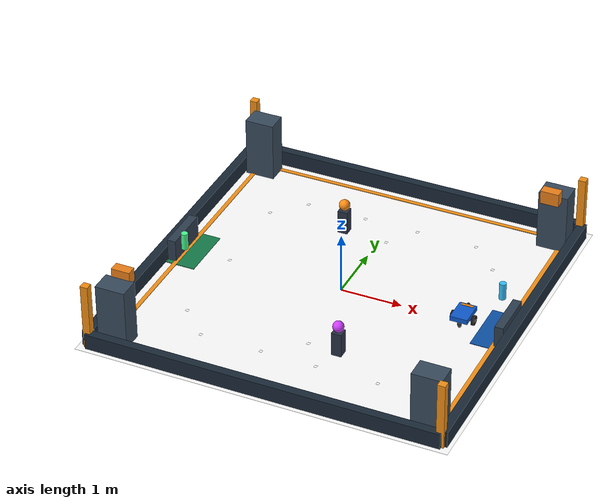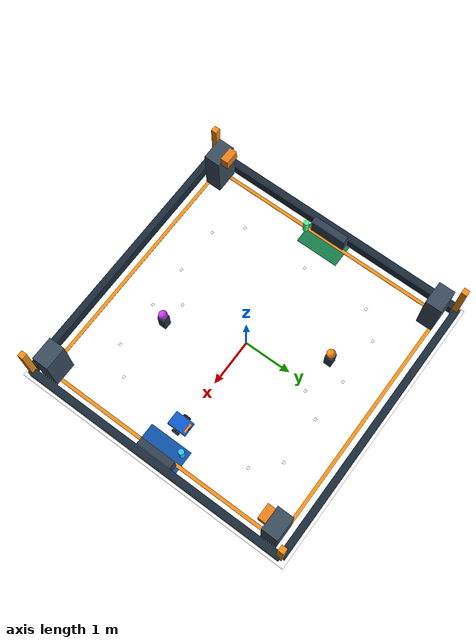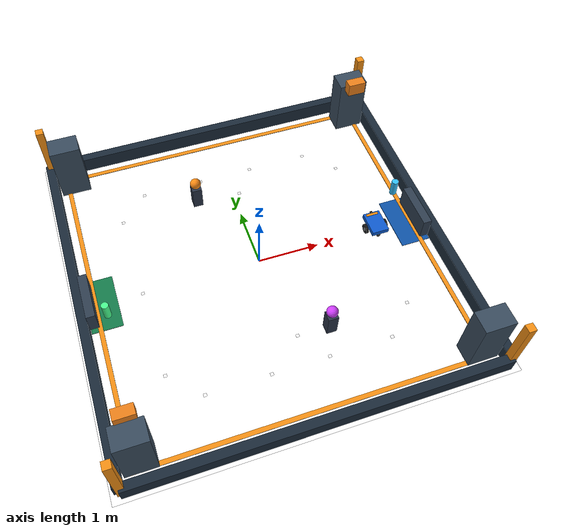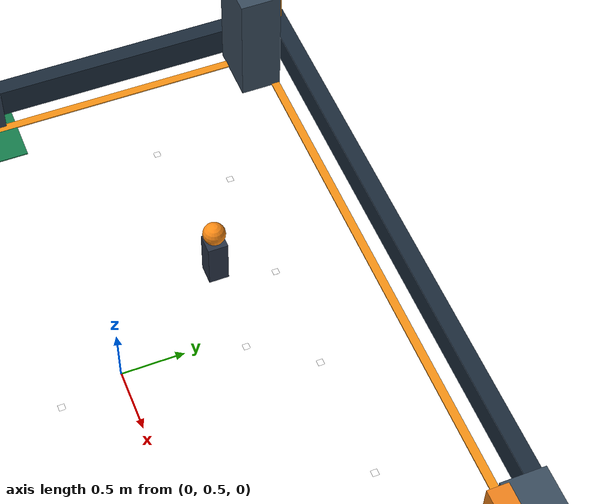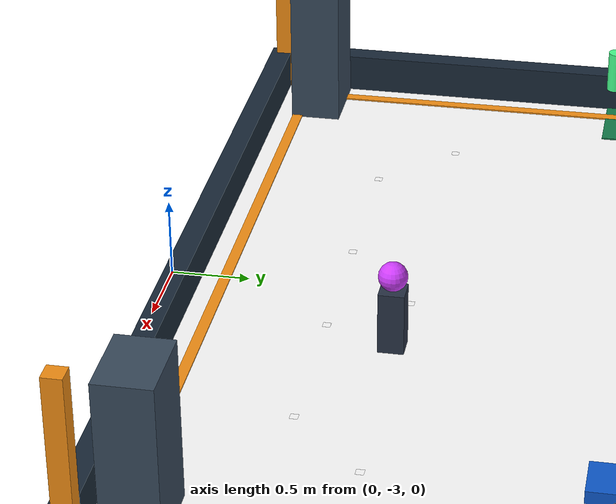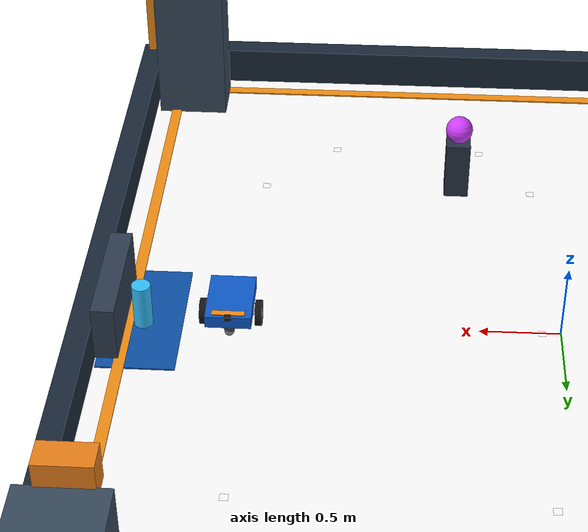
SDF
<?xml version='1.0' encoding='utf-8'?>
<sdf version="1.8">
  <world name="track_world">
    <physics name="physics" type="ignored">
      <max_step_size>0.02</max_step_size>
      <real_time_factor>1.0</real_time_factor>
    </physics>
    <plugin filename="libignition-gazebo-physics-system.so" name="ignition::gazebo::systems::Physics" />
    <plugin filename="libignition-gazebo-user-commands-system.so" name="ignition::gazebo::systems::UserCommands" />
    <plugin filename="libignition-gazebo-scene-broadcaster-system.so" name="ignition::gazebo::systems::SceneBroadcaster" />
    <scene>
      <ambient>0.8 0.8 0.8 1</ambient>
      <background>0.6 0.7 0.8 1</background>
      <shadows>false</shadows>
    </scene>
    <light name="sun" type="directional">
      <pose>0 0 10 0 0 0</pose>
      <diffuse>0.8 0.8 0.8 1</diffuse>
      <specular>0.1 0.1 0.1 1</specular>
      <direction>0 0 -1</direction>
      <cast_shadows>false</cast_shadows>
    </light>
    <model name="track_floor">
      <static>true</static>
      <link name="floor_link">
        <collision name="floor_collision">
          <geometry>
            <plane>
              <normal>0 0 1</normal>
              <size>6.0 6.0</size>
            </plane>
          </geometry>
        </collision>
        <visual name="floor_visual">
          <geometry>
            <plane>
              <normal>0 0 1</normal>
              <size>6.0 6.0</size>
            </plane>
          </geometry>
          <material>
            <ambient>1 1 1 1</ambient>
            <diffuse>1 1 1 1</diffuse>
            <specular>0 0 0 1</specular>
            <pbr>
              <metal>
                <albedo_map>../assets/generated_floors/junction_track.png</albedo_map>
                <metalness>0</metalness>
                <roughness>1</roughness>
              </metal>
            </pbr>
          </material>
        </visual>
      </link>
    </model>
    <plugin name="ignition::gazebo::systems::Sensors" filename="libignition-gazebo-sensors-system.so">
      <render_engine>ogre2</render_engine>
    </plugin>
    <!-- Visual-only warehouse scenery. It deliberately has no collision geometry,
         so it cannot alter the tested track, QR visibility footprint, or robot motion. -->
    <model name="warehouse_perimeter">
      <static>true</static>
      <link name="structure">
        <visual name="north_curb">
          <pose>0 2.87 0.13 0 0 0</pose>
          <geometry><box><size>5.72 0.14 0.26</size></box></geometry>
          <material><ambient>0.10 0.16 0.22 1</ambient><diffuse>0.10 0.16 0.22 1</diffuse></material>
        </visual>
        <visual name="south_curb">
          <pose>0 -2.87 0.13 0 0 0</pose>
          <geometry><box><size>5.72 0.14 0.26</size></box></geometry>
          <material><ambient>0.10 0.16 0.22 1</ambient><diffuse>0.10 0.16 0.22 1</diffuse></material>
        </visual>
        <visual name="east_curb">
          <pose>2.87 0 0.13 0 0 0</pose>
          <geometry><box><size>0.14 5.72 0.26</size></box></geometry>
          <material><ambient>0.10 0.16 0.22 1</ambient><diffuse>0.10 0.16 0.22 1</diffuse></material>
        </visual>
        <visual name="west_curb">
          <pose>-2.87 0 0.13 0 0 0</pose>
          <geometry><box><size>0.14 5.72 0.26</size></box></geometry>
          <material><ambient>0.10 0.16 0.22 1</ambient><diffuse>0.10 0.16 0.22 1</diffuse></material>
        </visual>
        <visual name="north_safety_strip"><pose>0 2.65 0.007 0 0 0</pose><geometry><box><size>5.38 0.07 0.01</size></box></geometry><material><ambient>0.95 0.56 0.08 1</ambient><diffuse>0.95 0.56 0.08 1</diffuse></material></visual>
        <visual name="south_safety_strip"><pose>0 -2.65 0.007 0 0 0</pose><geometry><box><size>5.38 0.07 0.01</size></box></geometry><material><ambient>0.95 0.56 0.08 1</ambient><diffuse>0.95 0.56 0.08 1</diffuse></material></visual>
        <visual name="east_safety_strip"><pose>2.65 0 0.007 0 0 0</pose><geometry><box><size>0.07 5.38 0.01</size></box></geometry><material><ambient>0.95 0.56 0.08 1</ambient><diffuse>0.95 0.56 0.08 1</diffuse></material></visual>
        <visual name="west_safety_strip"><pose>-2.65 0 0.007 0 0 0</pose><geometry><box><size>0.07 5.38 0.01</size></box></geometry><material><ambient>0.95 0.56 0.08 1</ambient><diffuse>0.95 0.56 0.08 1</diffuse></material></visual>
        <visual name="corner_post_ne"><pose>2.84 2.84 0.55 0 0 0</pose><geometry><box><size>0.12 0.12 1.10</size></box></geometry><material><ambient>0.95 0.56 0.08 1</ambient><diffuse>0.95 0.56 0.08 1</diffuse></material></visual>
        <visual name="corner_post_nw"><pose>-2.84 2.84 0.55 0 0 0</pose><geometry><box><size>0.12 0.12 1.10</size></box></geometry><material><ambient>0.95 0.56 0.08 1</ambient><diffuse>0.95 0.56 0.08 1</diffuse></material></visual>
        <visual name="corner_post_se"><pose>2.84 -2.84 0.55 0 0 0</pose><geometry><box><size>0.12 0.12 1.10</size></box></geometry><material><ambient>0.95 0.56 0.08 1</ambient><diffuse>0.95 0.56 0.08 1</diffuse></material></visual>
        <visual name="corner_post_sw"><pose>-2.84 -2.84 0.55 0 0 0</pose><geometry><box><size>0.12 0.12 1.10</size></box></geometry><material><ambient>0.95 0.56 0.08 1</ambient><diffuse>0.95 0.56 0.08 1</diffuse></material></visual>
      </link>
    </model>
    <model name="station_a_loading_bay">
      <static>true</static>
      <link name="bay">
        <visual name="floor_strip"><pose>2.55 0 0.006 0 0 0</pose><geometry><box><size>0.48 0.92 0.01</size></box></geometry><material><ambient>0.05 0.32 0.65 1</ambient><diffuse>0.05 0.32 0.65 1</diffuse></material></visual>
        <visual name="dock"><pose>2.73 0 0.19 0 0 0</pose><geometry><box><size>0.14 0.76 0.36</size></box></geometry><material><ambient>0.18 0.24 0.31 1</ambient><diffuse>0.18 0.24 0.31 1</diffuse></material></visual>
        <visual name="beacon"><pose>2.48 0.40 0.46 0 0 0</pose><geometry><cylinder><radius>0.055</radius><length>0.28</length></cylinder></geometry><material><ambient>0.20 0.76 1 1</ambient><diffuse>0.20 0.76 1 1</diffuse><emissive>0.06 0.28 0.40 1</emissive></material></visual>
      </link>
    </model>
    <model name="station_c_loading_bay">
      <static>true</static>
      <link name="bay">
        <visual name="floor_strip"><pose>-2.55 0 0.006 0 0 0</pose><geometry><box><size>0.48 0.92 0.01</size></box></geometry><material><ambient>0.08 0.48 0.29 1</ambient><diffuse>0.08 0.48 0.29 1</diffuse></material></visual>
        <visual name="dock"><pose>-2.73 0 0.19 0 0 0</pose><geometry><box><size>0.14 0.76 0.36</size></box></geometry><material><ambient>0.18 0.24 0.31 1</ambient><diffuse>0.18 0.24 0.31 1</diffuse></material></visual>
        <visual name="beacon"><pose>-2.48 -0.40 0.46 0 0 0</pose><geometry><cylinder><radius>0.055</radius><length>0.28</length></cylinder></geometry><material><ambient>0.28 1 0.56 1</ambient><diffuse>0.28 1 0.56 1</diffuse><emissive>0.08 0.35 0.17 1</emissive></material></visual>
      </link>
    </model>
    <model name="warehouse_shelves">
      <static>true</static>
      <link name="shelves">
        <visual name="north_east_shelf"><pose>2.53 2.52 0.50 0 0 0</pose><geometry><box><size>0.48 0.34 1.0</size></box></geometry><material><ambient>0.22 0.29 0.36 1</ambient><diffuse>0.22 0.29 0.36 1</diffuse></material></visual>
        <visual name="north_west_shelf"><pose>-2.53 2.52 0.50 0 0 0</pose><geometry><box><size>0.48 0.34 1.0</size></box></geometry><material><ambient>0.22 0.29 0.36 1</ambient><diffuse>0.22 0.29 0.36 1</diffuse></material></visual>
        <visual name="south_east_shelf"><pose>2.53 -2.52 0.50 0 0 0</pose><geometry><box><size>0.48 0.34 1.0</size></box></geometry><material><ambient>0.22 0.29 0.36 1</ambient><diffuse>0.22 0.29 0.36 1</diffuse></material></visual>
        <visual name="south_west_shelf"><pose>-2.53 -2.52 0.50 0 0 0</pose><geometry><box><size>0.48 0.34 1.0</size></box></geometry><material><ambient>0.22 0.29 0.36 1</ambient><diffuse>0.22 0.29 0.36 1</diffuse></material></visual>
        <visual name="north_east_crate"><pose>2.52 2.28 1.03 0 0 0</pose><geometry><box><size>0.30 0.16 0.22</size></box></geometry><material><ambient>0.92 0.50 0.10 1</ambient><diffuse>0.92 0.50 0.10 1</diffuse></material></visual>
        <visual name="south_west_crate"><pose>-2.52 -2.28 1.03 0 0 0</pose><geometry><box><size>0.30 0.16 0.22</size></box></geometry><material><ambient>0.92 0.50 0.10 1</ambient><diffuse>0.92 0.50 0.10 1</diffuse></material></visual>
      </link>
    </model>
    <model name="junction_beacons">
      <static>true</static>
      <link name="beacons">
        <visual name="north_beacon_base"><pose>-0.62 1.48 0.20 0 0 0</pose><geometry><box><size>0.16 0.16 0.40</size></box></geometry><material><ambient>0.16 0.20 0.27 1</ambient><diffuse>0.16 0.20 0.27 1</diffuse></material></visual>
        <visual name="north_beacon_light"><pose>-0.62 1.48 0.49 0 0 0</pose><geometry><sphere><radius>0.09</radius></sphere></geometry><material><ambient>1 0.55 0.08 1</ambient><diffuse>1 0.55 0.08 1</diffuse><emissive>0.35 0.13 0.01 1</emissive></material></visual>
        <visual name="south_beacon_base"><pose>0.62 -1.48 0.20 0 0 0</pose><geometry><box><size>0.16 0.16 0.40</size></box></geometry><material><ambient>0.16 0.20 0.27 1</ambient><diffuse>0.16 0.20 0.27 1</diffuse></material></visual>
        <visual name="south_beacon_light"><pose>0.62 -1.48 0.49 0 0 0</pose><geometry><sphere><radius>0.09</radius></sphere></geometry><material><ambient>0.82 0.24 1 1</ambient><diffuse>0.82 0.24 1 1</diffuse><emissive>0.23 0.03 0.35 1</emissive></material></visual>
      </link>
    </model>
    <include>
      <uri>model://amr</uri>
      <name>amr</name>
      <pose>2.015 0.0 0.005 0.0 0.0 1.5708</pose>
    </include>
    <model name="qr_turn_1_entry">
      <static>true</static>
      <pose>1.915 1.45 0.001 0 0 0.0</pose>
      <link name="marker">
        <visual name="qr_visual">
          <geometry>
            <plane>
              <normal>0 0 1</normal>
              <size>0.05 0.05</size>
            </plane>
          </geometry>
          <material>
            <ambient>1 1 1 1</ambient>
            <diffuse>1 1 1 1</diffuse>
            <specular>0 0 0 1</specular>
            <pbr>
              <metal>
                <albedo_map>../assets/checkpoints/junction_track/Turn 1 Entry.png</albedo_map>
                <metalness>0</metalness>
                <roughness>1</roughness>
              </metal>
            </pbr>
          </material>
        </visual>
      </link>
    </model>
    <model name="qr_turn_1_exit">
      <static>true</static>
      <pose>1.45 1.915 0.001 0 0 1.5707963267948963</pose>
      <link name="marker">
        <visual name="qr_visual">
          <geometry>
            <plane>
              <normal>0 0 1</normal>
              <size>0.05 0.05</size>
            </plane>
          </geometry>
          <material>
            <ambient>1 1 1 1</ambient>
            <diffuse>1 1 1 1</diffuse>
            <specular>0 0 0 1</specular>
            <pbr>
              <metal>
                <albedo_map>../assets/checkpoints/junction_track/Turn 1 Exit.png</albedo_map>
                <metalness>0</metalness>
                <roughness>1</roughness>
              </metal>
            </pbr>
          </material>
        </visual>
      </link>
    </model>
    <model name="qr_turn_2_entry">
      <static>true</static>
      <pose>-1.45 1.915 0.001 0 0 1.5707963267948966</pose>
      <link name="marker">
        <visual name="qr_visual">
          <geometry>
            <plane>
              <normal>0 0 1</normal>
              <size>0.05 0.05</size>
            </plane>
          </geometry>
          <material>
            <ambient>1 1 1 1</ambient>
            <diffuse>1 1 1 1</diffuse>
            <specular>0 0 0 1</specular>
            <pbr>
              <metal>
                <albedo_map>../assets/checkpoints/junction_track/Turn 2 Entry.png</albedo_map>
                <metalness>0</metalness>
                <roughness>1</roughness>
              </metal>
            </pbr>
          </material>
        </visual>
      </link>
    </model>
    <model name="qr_turn_2_exit">
      <static>true</static>
      <pose>-1.915 1.45 0.001 0 0 3.1415926535897936</pose>
      <link name="marker">
        <visual name="qr_visual">
          <geometry>
            <plane>
              <normal>0 0 1</normal>
              <size>0.05 0.05</size>
            </plane>
          </geometry>
          <material>
            <ambient>1 1 1 1</ambient>
            <diffuse>1 1 1 1</diffuse>
            <specular>0 0 0 1</specular>
            <pbr>
              <metal>
                <albedo_map>../assets/checkpoints/junction_track/Turn 2 Exit.png</albedo_map>
                <metalness>0</metalness>
                <roughness>1</roughness>
              </metal>
            </pbr>
          </material>
        </visual>
      </link>
    </model>
    <model name="qr_turn_3_entry">
      <static>true</static>
      <pose>-1.915 -1.45 0.001 0 0 3.1415926535897936</pose>
      <link name="marker">
        <visual name="qr_visual">
          <geometry>
            <plane>
              <normal>0 0 1</normal>
              <size>0.05 0.05</size>
            </plane>
          </geometry>
          <material>
            <ambient>1 1 1 1</ambient>
            <diffuse>1 1 1 1</diffuse>
            <specular>0 0 0 1</specular>
            <pbr>
              <metal>
                <albedo_map>../assets/checkpoints/junction_track/Turn 3 Entry.png</albedo_map>
                <metalness>0</metalness>
                <roughness>1</roughness>
              </metal>
            </pbr>
          </material>
        </visual>
      </link>
    </model>
    <model name="qr_turn_3_exit">
      <static>true</static>
      <pose>-1.45 -1.915 0.001 0 0 4.71238898038469</pose>
      <link name="marker">
        <visual name="qr_visual">
          <geometry>
            <plane>
              <normal>0 0 1</normal>
              <size>0.05 0.05</size>
            </plane>
          </geometry>
          <material>
            <ambient>1 1 1 1</ambient>
            <diffuse>1 1 1 1</diffuse>
            <specular>0 0 0 1</specular>
            <pbr>
              <metal>
                <albedo_map>../assets/checkpoints/junction_track/Turn 3 Exit.png</albedo_map>
                <metalness>0</metalness>
                <roughness>1</roughness>
              </metal>
            </pbr>
          </material>
        </visual>
      </link>
    </model>
    <model name="qr_turn_4_entry">
      <static>true</static>
      <pose>1.45 -1.915 0.001 0 0 4.71238898038469</pose>
      <link name="marker">
        <visual name="qr_visual">
          <geometry>
            <plane>
              <normal>0 0 1</normal>
              <size>0.05 0.05</size>
            </plane>
          </geometry>
          <material>
            <ambient>1 1 1 1</ambient>
            <diffuse>1 1 1 1</diffuse>
            <specular>0 0 0 1</specular>
            <pbr>
              <metal>
                <albedo_map>../assets/checkpoints/junction_track/Turn 4 Entry.png</albedo_map>
                <metalness>0</metalness>
                <roughness>1</roughness>
              </metal>
            </pbr>
          </material>
        </visual>
      </link>
    </model>
    <model name="qr_turn_4_exit">
      <static>true</static>
      <pose>1.915 -1.45 0.001 0 0 0.0</pose>
      <link name="marker">
        <visual name="qr_visual">
          <geometry>
            <plane>
              <normal>0 0 1</normal>
              <size>0.05 0.05</size>
            </plane>
          </geometry>
          <material>
            <ambient>1 1 1 1</ambient>
            <diffuse>1 1 1 1</diffuse>
            <specular>0 0 0 1</specular>
            <pbr>
              <metal>
                <albedo_map>../assets/checkpoints/junction_track/Turn 4 Exit.png</albedo_map>
                <metalness>0</metalness>
                <roughness>1</roughness>
              </metal>
            </pbr>
          </material>
        </visual>
      </link>
    </model>
    <model name="qr_station_a">
      <static>true</static>
      <pose>1.915 0.0 0.001 0 0 0.0</pose>
      <link name="marker">
        <visual name="qr_visual">
          <geometry>
            <plane>
              <normal>0 0 1</normal>
              <size>0.05 0.05</size>
            </plane>
          </geometry>
          <material>
            <ambient>1 1 1 1</ambient>
            <diffuse>1 1 1 1</diffuse>
            <specular>0 0 0 1</specular>
            <pbr>
              <metal>
                <albedo_map>../assets/checkpoints/junction_track/Station A.png</albedo_map>
                <metalness>0</metalness>
                <roughness>1</roughness>
              </metal>
            </pbr>
          </material>
        </visual>
      </link>
    </model>
    <model name="qr_j1a">
      <static>true</static>
      <pose>0.45 1.915 0.001 0 0 1.5707963267948963</pose>
      <link name="marker">
        <visual name="qr_visual">
          <geometry>
            <plane>
              <normal>0 0 1</normal>
              <size>0.05 0.05</size>
            </plane>
          </geometry>
          <material>
            <ambient>1 1 1 1</ambient>
            <diffuse>1 1 1 1</diffuse>
            <specular>0 0 0 1</specular>
            <pbr>
              <metal>
                <albedo_map>../assets/checkpoints/junction_track/J1A.png</albedo_map>
                <metalness>0</metalness>
                <roughness>1</roughness>
              </metal>
            </pbr>
          </material>
        </visual>
      </link>
    </model>
    <model name="qr_station_c">
      <static>true</static>
      <pose>-1.915 0.0 0.001 0 0 3.1415926535897936</pose>
      <link name="marker">
        <visual name="qr_visual">
          <geometry>
            <plane>
              <normal>0 0 1</normal>
              <size>0.05 0.05</size>
            </plane>
          </geometry>
          <material>
            <ambient>1 1 1 1</ambient>
            <diffuse>1 1 1 1</diffuse>
            <specular>0 0 0 1</specular>
            <pbr>
              <metal>
                <albedo_map>../assets/checkpoints/junction_track/Station C.png</albedo_map>
                <metalness>0</metalness>
                <roughness>1</roughness>
              </metal>
            </pbr>
          </material>
        </visual>
      </link>
    </model>
    <model name="qr_j2c">
      <static>true</static>
      <pose>0.45 -1.915 0.001 0 0 4.71238898038469</pose>
      <link name="marker">
        <visual name="qr_visual">
          <geometry>
            <plane>
              <normal>0 0 1</normal>
              <size>0.05 0.05</size>
            </plane>
          </geometry>
          <material>
            <ambient>1 1 1 1</ambient>
            <diffuse>1 1 1 1</diffuse>
            <specular>0 0 0 1</specular>
            <pbr>
              <metal>
                <albedo_map>../assets/checkpoints/junction_track/J2C.png</albedo_map>
                <metalness>0</metalness>
                <roughness>1</roughness>
              </metal>
            </pbr>
          </material>
        </visual>
      </link>
    </model>
    <model name="qr_j1b">
      <static>true</static>
      <pose>0.115 1.45 0.001 0 0 1.5707963267948963</pose>
      <link name="marker">
        <visual name="qr_visual">
          <geometry>
            <plane>
              <normal>0 0 1</normal>
              <size>0.05 0.05</size>
            </plane>
          </geometry>
          <material>
            <ambient>1 1 1 1</ambient>
            <diffuse>1 1 1 1</diffuse>
            <specular>0 0 0 1</specular>
            <pbr>
              <metal>
                <albedo_map>../assets/checkpoints/junction_track/J1B.png</albedo_map>
                <metalness>0</metalness>
                <roughness>1</roughness>
              </metal>
            </pbr>
          </material>
        </visual>
      </link>
    </model>
    <model name="qr_j1c">
      <static>true</static>
      <pose>-0.45 1.915 0.001 0 0 1.5707963267948963</pose>
      <link name="marker">
        <visual name="qr_visual">
          <geometry>
            <plane>
              <normal>0 0 1</normal>
              <size>0.05 0.05</size>
            </plane>
          </geometry>
          <material>
            <ambient>1 1 1 1</ambient>
            <diffuse>1 1 1 1</diffuse>
            <specular>0 0 0 1</specular>
            <pbr>
              <metal>
                <albedo_map>../assets/checkpoints/junction_track/J1C.png</albedo_map>
                <metalness>0</metalness>
                <roughness>1</roughness>
              </metal>
            </pbr>
          </material>
        </visual>
      </link>
    </model>
    <model name="qr_j2b">
      <static>true</static>
      <pose>0.115 -1.45 0.001 0 0 4.71238898038469</pose>
      <link name="marker">
        <visual name="qr_visual">
          <geometry>
            <plane>
              <normal>0 0 1</normal>
              <size>0.05 0.05</size>
            </plane>
          </geometry>
          <material>
            <ambient>1 1 1 1</ambient>
            <diffuse>1 1 1 1</diffuse>
            <specular>0 0 0 1</specular>
            <pbr>
              <metal>
                <albedo_map>../assets/checkpoints/junction_track/J2B.png</albedo_map>
                <metalness>0</metalness>
                <roughness>1</roughness>
              </metal>
            </pbr>
          </material>
        </visual>
      </link>
    </model>
    <model name="qr_j2a">
      <static>true</static>
      <pose>-0.45 -1.915 0.001 0 0 4.71238898038469</pose>
      <link name="marker">
        <visual name="qr_visual">
          <geometry>
            <plane>
              <normal>0 0 1</normal>
              <size>0.05 0.05</size>
            </plane>
          </geometry>
          <material>
            <ambient>1 1 1 1</ambient>
            <diffuse>1 1 1 1</diffuse>
            <specular>0 0 0 1</specular>
            <pbr>
              <metal>
                <albedo_map>../assets/checkpoints/junction_track/J2A.png</albedo_map>
                <metalness>0</metalness>
                <roughness>1</roughness>
              </metal>
            </pbr>
          </material>
        </visual>
      </link>
    </model>
    <model name="qr_station_b">
      <static>true</static>
      <pose>0.115 0.0 0.001 0 0 4.71238898038469</pose>
      <link name="marker">
        <visual name="qr_visual">
          <geometry>
            <plane>
              <normal>0 0 1</normal>
              <size>0.05 0.05</size>
            </plane>
          </geometry>
          <material>
            <ambient>1 1 1 1</ambient>
            <diffuse>1 1 1 1</diffuse>
            <specular>0 0 0 1</specular>
            <pbr>
              <metal>
                <albedo_map>../assets/checkpoints/junction_track/Station B.png</albedo_map>
                <metalness>0</metalness>
                <roughness>1</roughness>
              </metal>
            </pbr>
          </material>
        </visual>
      </link>
    </model>
  </world>
</sdf>

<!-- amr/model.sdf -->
<sdf version="1.8">
  <model name="amr">
    <pose>0 0 0 0 0 0</pose>
    <static>false</static>
    <link name="base_link">
      <pose>0 0 0.16 0 0 0</pose>
      <inertial>
        <mass>4</mass>
        <inertia>
          <ixx>0.028266666666666673</ixx>
          <iyy>0.05546666666666667</iyy>
          <izz>0.07946666666666669</izz>
          <ixy>0</ixy>
          <ixz>0</ixz>
          <iyz>0</iyz>
        </inertia>
      </inertial>
      <visual name="chassis_visual">
        <pose>0 0 0 0 0 0</pose>
        <geometry>
          <box>
            <size>0.40 0.28 0.08</size>
          </box>
        </geometry>
        <material>
          <ambient>0.05 0.35 0.8 1</ambient>
          <diffuse>0.05 0.35 0.8 1</diffuse>
        </material>
      </visual>
      <collision name="chassis_collision">
        <pose>0 0 0 0 0 0</pose>
        <geometry>
          <box>
            <size>0.40 0.28 0.08</size>
          </box>
        </geometry>
        <surface>
          <friction>
            <ode>
              <mu>1.0</mu>
              <mu2>1.0</mu2>
            </ode>
          </friction>
        </surface>
      </collision>
      <visual name="front_mark_visual">
        <pose>0.16 0 0.043 0 0 0</pose>
        <geometry>
          <box>
            <size>0.04 0.20 0.005</size>
          </box>
        </geometry>
        <material>
          <ambient>1 0.55 0.05 1</ambient>
          <diffuse>1 0.55 0.05 1</diffuse>
        </material>
      </visual>
      <visual name="sensor_strip_visual">
        <pose>0.17 0 -0.049 0 0 0</pose>
        <geometry>
          <box>
            <size>0.025 0.11 0.012</size>
          </box>
        </geometry>
        <material>
          <ambient>0.1 0.1 0.1 1</ambient>
          <diffuse>0.1 0.1 0.1 1</diffuse>
        </material>
      </visual>
      <sensor name="line_0" type="camera">
        <pose>0.17 0.04 -0.06 0 1.5707963267948966 0</pose>
        <always_on>true</always_on>
        <update_rate>15</update_rate>
        <topic>/amr/line_0/image</topic>
        <camera>
          <horizontal_fov>0.1</horizontal_fov>
          <image>
            <width>16</width>
            <height>16</height>
            <format>R8G8B8</format>
          </image>
          <clip>
            <near>0.005</near>
            <far>2</far>
          </clip>
        </camera>
      </sensor>
      <visual name="line_housing_0_visual">
        <pose>0.17 0.04 -0.057 0 0 0</pose>
        <geometry>
          <box>
            <size>0.008 0.008 0.004</size>
          </box>
        </geometry>
        <material>
          <ambient>0.9 0.1 0.1 1</ambient>
          <diffuse>0.9 0.1 0.1 1</diffuse>
        </material>
      </visual>
      <sensor name="line_1" type="camera">
        <pose>0.17 0.02 -0.06 0 1.5707963267948966 0</pose>
        <always_on>true</always_on>
        <update_rate>15</update_rate>
        <topic>/amr/line_1/image</topic>
        <camera>
          <horizontal_fov>0.1</horizontal_fov>
          <image>
            <width>16</width>
            <height>16</height>
            <format>R8G8B8</format>
          </image>
          <clip>
            <near>0.005</near>
            <far>2</far>
          </clip>
        </camera>
      </sensor>
      <visual name="line_housing_1_visual">
        <pose>0.17 0.02 -0.057 0 0 0</pose>
        <geometry>
          <box>
            <size>0.008 0.008 0.004</size>
          </box>
        </geometry>
        <material>
          <ambient>0.9 0.1 0.1 1</ambient>
          <diffuse>0.9 0.1 0.1 1</diffuse>
        </material>
      </visual>
      <sensor name="line_2" type="camera">
        <pose>0.17 0 -0.06 0 1.5707963267948966 0</pose>
        <always_on>true</always_on>
        <update_rate>15</update_rate>
        <topic>/amr/line_2/image</topic>
        <camera>
          <horizontal_fov>0.1</horizontal_fov>
          <image>
            <width>16</width>
            <height>16</height>
            <format>R8G8B8</format>
          </image>
          <clip>
            <near>0.005</near>
            <far>2</far>
          </clip>
        </camera>
      </sensor>
      <visual name="line_housing_2_visual">
        <pose>0.17 0 -0.057 0 0 0</pose>
        <geometry>
          <box>
            <size>0.008 0.008 0.004</size>
          </box>
        </geometry>
        <material>
          <ambient>0.9 0.1 0.1 1</ambient>
          <diffuse>0.9 0.1 0.1 1</diffuse>
        </material>
      </visual>
      <sensor name="line_3" type="camera">
        <pose>0.17 -0.02 -0.06 0 1.5707963267948966 0</pose>
        <always_on>true</always_on>
        <update_rate>15</update_rate>
        <topic>/amr/line_3/image</topic>
        <camera>
          <horizontal_fov>0.1</horizontal_fov>
          <image>
            <width>16</width>
            <height>16</height>
            <format>R8G8B8</format>
          </image>
          <clip>
            <near>0.005</near>
            <far>2</far>
          </clip>
        </camera>
      </sensor>
      <visual name="line_housing_3_visual">
        <pose>0.17 -0.02 -0.057 0 0 0</pose>
        <geometry>
          <box>
            <size>0.008 0.008 0.004</size>
          </box>
        </geometry>
        <material>
          <ambient>0.9 0.1 0.1 1</ambient>
          <diffuse>0.9 0.1 0.1 1</diffuse>
        </material>
      </visual>
      <sensor name="line_4" type="camera">
        <pose>0.17 -0.04 -0.06 0 1.5707963267948966 0</pose>
        <always_on>true</always_on>
        <update_rate>15</update_rate>
        <topic>/amr/line_4/image</topic>
        <camera>
          <horizontal_fov>0.1</horizontal_fov>
          <image>
            <width>16</width>
            <height>16</height>
            <format>R8G8B8</format>
          </image>
          <clip>
            <near>0.005</near>
            <far>2</far>
          </clip>
        </camera>
      </sensor>
      <visual name="line_housing_4_visual">
        <pose>0.17 -0.04 -0.057 0 0 0</pose>
        <geometry>
          <box>
            <size>0.008 0.008 0.004</size>
          </box>
        </geometry>
        <material>
          <ambient>0.9 0.1 0.1 1</ambient>
          <diffuse>0.9 0.1 0.1 1</diffuse>
        </material>
      </visual>
      <sensor name="qr" type="camera">
        <pose>0 0 -0.06 0 1.5707963267948966 0</pose>
        <always_on>true</always_on>
        <update_rate>5</update_rate>
        <topic>/amr/qr/image</topic>
        <camera>
          <horizontal_fov>1.8</horizontal_fov>
          <image>
            <width>640</width>
            <height>480</height>
            <format>R8G8B8</format>
          </image>
          <clip>
            <near>0.005</near>
            <far>2</far>
          </clip>
        </camera>
      </sensor>
      <visual name="qr_housing_visual">
        <pose>0 0 -0.049 0 0 0</pose>
        <geometry>
          <box>
            <size>0.025 0.025 0.012</size>
          </box>
        </geometry>
        <material>
          <ambient>0.1 0.1 0.1 1</ambient>
          <diffuse>0.1 0.1 0.1 1</diffuse>
        </material>
      </visual>
      <sensor name="front" type="camera">
        <pose>0.21 0 0.04 0 0 0</pose>
        <always_on>true</always_on>
        <update_rate>5</update_rate>
        <topic>/amr/front/image</topic>
        <camera>
          <horizontal_fov>1.2</horizontal_fov>
          <image>
            <width>1920</width>
            <height>1080</height>
            <format>R8G8B8</format>
          </image>
          <clip>
            <near>0.005</near>
            <far>10</far>
          </clip>
        </camera>
      </sensor>
      <visual name="front_camera_housing_visual">
        <pose>0.20 0 0.04 0 0 0</pose>
        <geometry>
          <box>
            <size>0.03 0.04 0.025</size>
          </box>
        </geometry>
        <material>
          <ambient>0.1 0.1 0.1 1</ambient>
          <diffuse>0.1 0.1 0.1 1</diffuse>
        </material>
      </visual>
      <visual name="left_motor_mount_visual">
        <pose>0 0.122 -0.0575 0 0 0</pose>
        <geometry>
          <box>
            <size>0.06 0.026 0.055</size>
          </box>
        </geometry>
        <material>
          <ambient>0.22 0.25 0.28 1</ambient>
          <diffuse>0.22 0.25 0.28 1</diffuse>
        </material>
      </visual>
      <visual name="left_axle_visual">
        <pose>0 0.145 -0.08 1.5707963267948966 0 0</pose>
        <geometry>
          <cylinder>
            <radius>0.012</radius>
            <length>0.05</length>
          </cylinder>
        </geometry>
        <material>
          <ambient>0.65 0.68 0.72 1</ambient>
          <diffuse>0.65 0.68 0.72 1</diffuse>
        </material>
      </visual>
      <visual name="right_motor_mount_visual">
        <pose>0 -0.122 -0.0575 0 0 0</pose>
        <geometry>
          <box>
            <size>0.06 0.026 0.055</size>
          </box>
        </geometry>
        <material>
          <ambient>0.22 0.25 0.28 1</ambient>
          <diffuse>0.22 0.25 0.28 1</diffuse>
        </material>
      </visual>
      <visual name="right_axle_visual">
        <pose>0 -0.145 -0.08 1.5707963267948966 0 0</pose>
        <geometry>
          <cylinder>
            <radius>0.012</radius>
            <length>0.05</length>
          </cylinder>
        </geometry>
        <material>
          <ambient>0.65 0.68 0.72 1</ambient>
          <diffuse>0.65 0.68 0.72 1</diffuse>
        </material>
      </visual>
      <visual name="front_support_plate_visual">
        <pose>0.12 0 -0.04 0 0 0</pose>
        <geometry>
          <box>
            <size>0.065 0.065 0.008</size>
          </box>
        </geometry>
        <material>
          <ambient>0.25 0.28 0.32 1</ambient>
          <diffuse>0.25 0.28 0.32 1</diffuse>
        </material>
      </visual>
      <visual name="front_support_stem_visual">
        <pose>0.12 0 -0.066 0 0 0</pose>
        <geometry>
          <cylinder>
            <radius>0.013</radius>
            <length>0.052</length>
          </cylinder>
        </geometry>
        <material>
          <ambient>0.65 0.68 0.72 1</ambient>
          <diffuse>0.65 0.68 0.72 1</diffuse>
        </material>
      </visual>
      <visual name="front_support_housing_visual">
        <pose>0.12 0 -0.10 0 0 0</pose>
        <geometry>
          <cylinder>
            <radius>0.033</radius>
            <length>0.022</length>
          </cylinder>
        </geometry>
        <material>
          <ambient>0.25 0.28 0.32 1</ambient>
          <diffuse>0.25 0.28 0.32 1</diffuse>
        </material>
      </visual>
      <visual name="rear_support_plate_visual">
        <pose>-0.15 0 -0.04 0 0 0</pose>
        <geometry>
          <box>
            <size>0.065 0.065 0.008</size>
          </box>
        </geometry>
        <material>
          <ambient>0.25 0.28 0.32 1</ambient>
          <diffuse>0.25 0.28 0.32 1</diffuse>
        </material>
      </visual>
      <visual name="rear_support_stem_visual">
        <pose>-0.15 0 -0.066 0 0 0</pose>
        <geometry>
          <cylinder>
            <radius>0.013</radius>
            <length>0.052</length>
          </cylinder>
        </geometry>
        <material>
          <ambient>0.65 0.68 0.72 1</ambient>
          <diffuse>0.65 0.68 0.72 1</diffuse>
        </material>
      </visual>
      <visual name="rear_support_housing_visual">
        <pose>-0.15 0 -0.10 0 0 0</pose>
        <geometry>
          <cylinder>
            <radius>0.033</radius>
            <length>0.022</length>
          </cylinder>
        </geometry>
        <material>
          <ambient>0.25 0.28 0.32 1</ambient>
          <diffuse>0.25 0.28 0.32 1</diffuse>
        </material>
      </visual>
    </link>
    <link name="left_wheel">
      <pose>0 0.17 0.08 0 0 0</pose>
      <inertial>
        <mass>0.3</mass>
        <inertia>
          <ixx>0.0005200000000000001</ixx>
          <iyy>0.00096</iyy>
          <izz>0.0005200000000000001</izz>
          <ixy>0</ixy>
          <ixz>0</ixz>
          <iyz>0</iyz>
        </inertia>
      </inertial>
      <visual name="left_wheel_visual">
        <pose>0 0 0 1.5707963267948966 0 0</pose>
        <geometry>
          <cylinder>
            <radius>0.08</radius>
            <length>0.04</length>
          </cylinder>
        </geometry>
        <material>
          <ambient>0.08 0.08 0.08 1</ambient>
          <diffuse>0.08 0.08 0.08 1</diffuse>
        </material>
      </visual>
      <collision name="left_wheel_collision">
        <pose>0 0 0 1.5707963267948966 0 0</pose>
        <geometry>
          <cylinder>
            <radius>0.08</radius>
            <length>0.04</length>
          </cylinder>
        </geometry>
        <surface>
          <friction>
            <ode>
              <mu>1.0</mu>
              <mu2>1.0</mu2>
            </ode>
          </friction>
        </surface>
      </collision>
      <visual name="left_hub_visual">
        <pose>0 0.021 0 1.5707963267948966 0 0</pose>
        <geometry>
          <cylinder>
            <radius>0.028</radius>
            <length>0.004</length>
          </cylinder>
        </geometry>
        <material>
          <ambient>0.65 0.68 0.72 1</ambient>
          <diffuse>0.65 0.68 0.72 1</diffuse>
        </material>
      </visual>
    </link>
    <joint name="left_wheel_joint" type="revolute">
      <parent>base_link</parent>
      <child>left_wheel</child>
      <axis>
        <xyz>0 1 0</xyz>
        <limit>
          <lower>-1e+16</lower>
          <upper>1e+16</upper>
          <effort>10</effort>
          <velocity>20</velocity>
        </limit>
      </axis>
    </joint>
    <link name="right_wheel">
      <pose>0 -0.17 0.08 0 0 0</pose>
      <inertial>
        <mass>0.3</mass>
        <inertia>
          <ixx>0.0005200000000000001</ixx>
          <iyy>0.00096</iyy>
          <izz>0.0005200000000000001</izz>
          <ixy>0</ixy>
          <ixz>0</ixz>
          <iyz>0</iyz>
        </inertia>
      </inertial>
      <visual name="right_wheel_visual">
        <pose>0 0 0 1.5707963267948966 0 0</pose>
        <geometry>
          <cylinder>
            <radius>0.08</radius>
            <length>0.04</length>
          </cylinder>
        </geometry>
        <material>
          <ambient>0.08 0.08 0.08 1</ambient>
          <diffuse>0.08 0.08 0.08 1</diffuse>
        </material>
      </visual>
      <collision name="right_wheel_collision">
        <pose>0 0 0 1.5707963267948966 0 0</pose>
        <geometry>
          <cylinder>
            <radius>0.08</radius>
            <length>0.04</length>
          </cylinder>
        </geometry>
        <surface>
          <friction>
            <ode>
              <mu>1.0</mu>
              <mu2>1.0</mu2>
            </ode>
          </friction>
        </surface>
      </collision>
      <visual name="right_hub_visual">
        <pose>0 -0.021 0 1.5707963267948966 0 0</pose>
        <geometry>
          <cylinder>
            <radius>0.028</radius>
            <length>0.004</length>
          </cylinder>
        </geometry>
        <material>
          <ambient>0.65 0.68 0.72 1</ambient>
          <diffuse>0.65 0.68 0.72 1</diffuse>
        </material>
      </visual>
    </link>
    <joint name="right_wheel_joint" type="revolute">
      <parent>base_link</parent>
      <child>right_wheel</child>
      <axis>
        <xyz>0 1 0</xyz>
        <limit>
          <lower>-1e+16</lower>
          <upper>1e+16</upper>
          <effort>10</effort>
          <velocity>20</velocity>
        </limit>
      </axis>
    </joint>
    <link name="front_support">
      <pose>0.12 0 0.03 0 0 0</pose>
      <inertial>
        <mass>0.1</mass>
        <inertia>
          <ixx>3.6e-05</ixx>
          <iyy>3.6e-05</iyy>
          <izz>3.6e-05</izz>
          <ixy>0</ixy>
          <ixz>0</ixz>
          <iyz>0</iyz>
        </inertia>
      </inertial>
      <visual name="front_support_visual">
        <pose>0 0 0 0 0 0</pose>
        <geometry>
          <sphere>
            <radius>0.03</radius>
          </sphere>
        </geometry>
        <material>
          <ambient>0.5 0.5 0.5 1</ambient>
          <diffuse>0.5 0.5 0.5 1</diffuse>
        </material>
      </visual>
      <collision name="front_support_collision">
        <pose>0 0 0 0 0 0</pose>
        <geometry>
          <sphere>
            <radius>0.03</radius>
          </sphere>
        </geometry>
        <surface>
          <friction>
            <ode>
              <mu>0.001</mu>
              <mu2>0.001</mu2>
            </ode>
          </friction>
        </surface>
      </collision>
    </link>
    <joint name="front_support_joint" type="fixed">
      <parent>base_link</parent>
      <child>front_support</child>
    </joint>
    <link name="rear_support">
      <pose>-0.15 0 0.03 0 0 0</pose>
      <inertial>
        <mass>0.1</mass>
        <inertia>
          <ixx>3.6e-05</ixx>
          <iyy>3.6e-05</iyy>
          <izz>3.6e-05</izz>
          <ixy>0</ixy>
          <ixz>0</ixz>
          <iyz>0</iyz>
        </inertia>
      </inertial>
      <visual name="rear_support_visual">
        <pose>0 0 0 0 0 0</pose>
        <geometry>
          <sphere>
            <radius>0.03</radius>
          </sphere>
        </geometry>
        <material>
          <ambient>0.5 0.5 0.5 1</ambient>
          <diffuse>0.5 0.5 0.5 1</diffuse>
        </material>
      </visual>
      <collision name="rear_support_collision">
        <pose>0 0 0 0 0 0</pose>
        <geometry>
          <sphere>
            <radius>0.03</radius>
          </sphere>
        </geometry>
        <surface>
          <friction>
            <ode>
              <mu>0.001</mu>
              <mu2>0.001</mu2>
            </ode>
          </friction>
        </surface>
      </collision>
    </link>
    <joint name="rear_support_joint" type="fixed">
      <parent>base_link</parent>
      <child>rear_support</child>
    </joint>
    <plugin filename="libignition-gazebo-diff-drive-system.so" name="ignition::gazebo::systems::DiffDrive">
      <left_joint>left_wheel_joint</left_joint>
      <right_joint>right_wheel_joint</right_joint>
      <wheel_separation>0.34</wheel_separation>
      <wheel_radius>0.08</wheel_radius>
      <topic>/amr/cmd_vel</topic>
      <odom_topic>/amr/odometry</odom_topic>
      <odom_publish_frequency>30</odom_publish_frequency>
    </plugin>
  </model>
</sdf>
